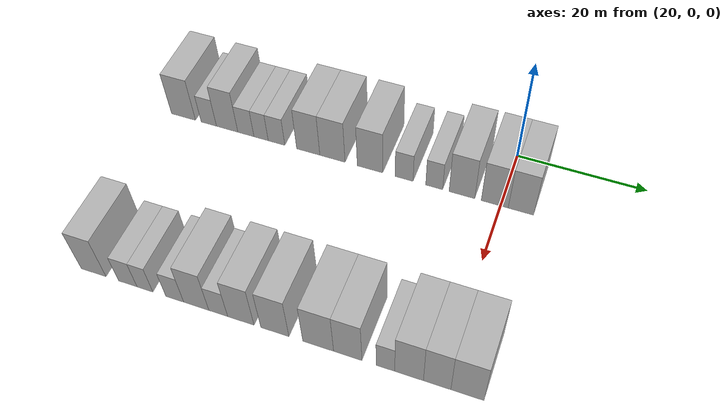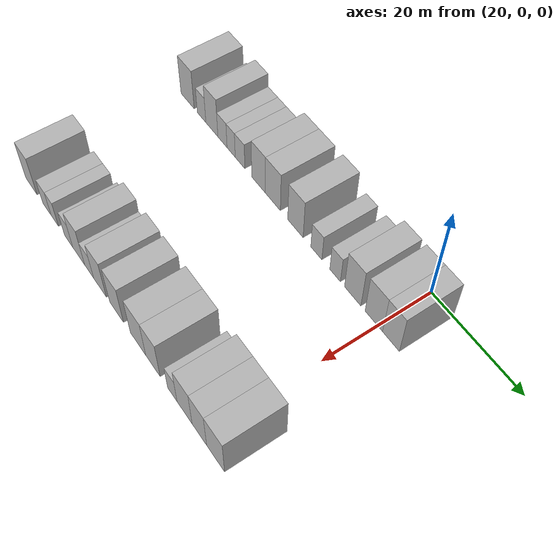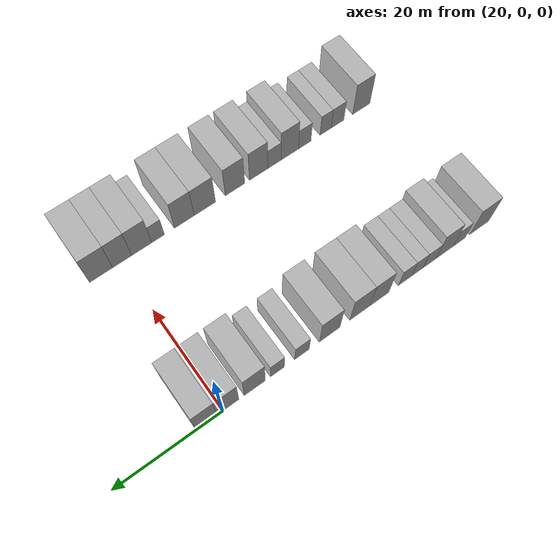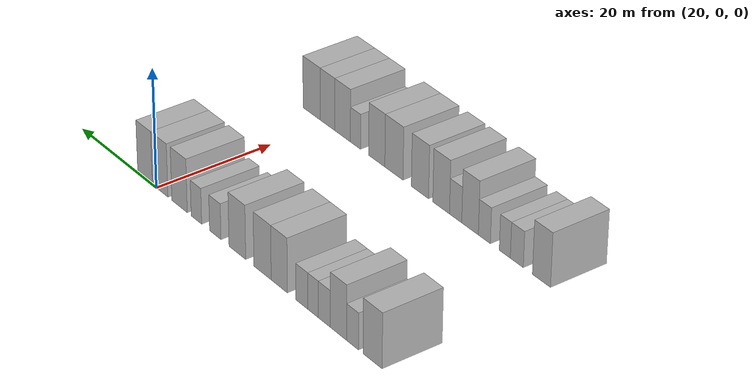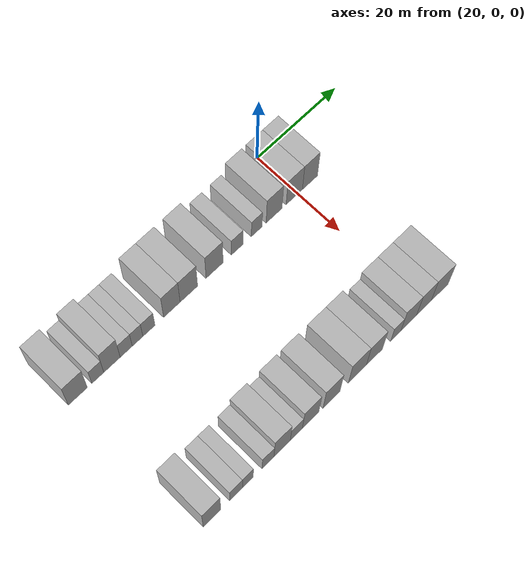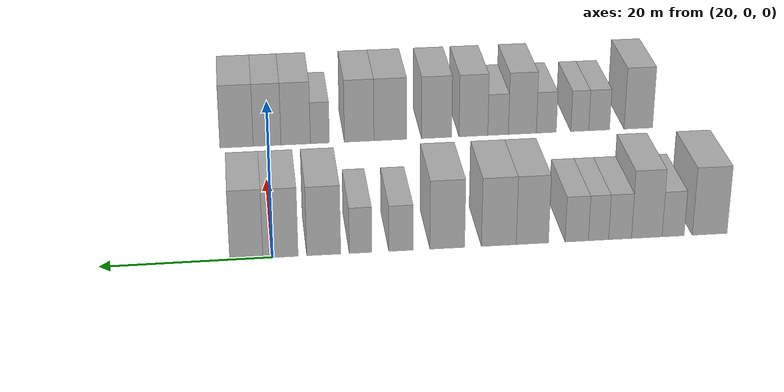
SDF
<sdf version="1.6">
 <world name="default">
  <model name="building_40">
   <static>1</static>
   <pose>25.0000 -52.2146 0 0.000000 0.000000 0.000000</pose>
   <link name="link">
    <pose>0 0 4.50 0 0 0</pose>
    <collision name="collision"><geometry><box><size>10.0000 4.2497 9.0000</size></box></geometry></collision>
    <visual name="visual">
     <cast_shadows>0</cast_shadows>
     <geometry><box><size>10.0000 4.2497 9.0000</size></box></geometry>
     <material>
      <script>
       <uri>model://HANNAS_wall/materials/scripts</uri>
       <uri>model://HANNAS_wall/materials/textures</uri>
       <name>vrc/HANNAS_wall</name>
      </script>
     </material>
    </visual>
   </link>
  </model>
  <model name="building_41">
   <static>1</static>
   <pose>25.0000 -47.7446 0 0.000000 0.000000 0.000000</pose>
   <link name="link">
    <pose>0 0 3.00 0 0 0</pose>
    <collision name="collision"><geometry><box><size>10.0000 2.6902 6.0000</size></box></geometry></collision>
    <visual name="visual">
     <cast_shadows>0</cast_shadows>
     <geometry><box><size>10.0000 2.6902 6.0000</size></box></geometry>
     <material>
      <script>
       <uri>model://HANNAS_wall/materials/scripts</uri>
       <uri>model://HANNAS_wall/materials/textures</uri>
       <name>vrc/HANNAS_wall</name>
      </script>
     </material>
    </visual>
   </link>
  </model>
  <model name="building_42">
   <static>1</static>
   <pose>25.0000 -44.5399 0 0.000000 0.000000 0.000000</pose>
   <link name="link">
    <pose>0 0 4.50 0 0 0</pose>
    <collision name="collision"><geometry><box><size>10.0000 3.7191 9.0000</size></box></geometry></collision>
    <visual name="visual">
     <cast_shadows>0</cast_shadows>
     <geometry><box><size>10.0000 3.7191 9.0000</size></box></geometry>
     <material>
      <script>
       <uri>model://HANNAS_wall/materials/scripts</uri>
       <uri>model://HANNAS_wall/materials/textures</uri>
       <name>vrc/HANNAS_wall</name>
      </script>
     </material>
    </visual>
   </link>
  </model>
  <model name="building_43">
   <static>1</static>
   <pose>25.0000 -41.2943 0 0.000000 0.000000 0.000000</pose>
   <link name="link">
    <pose>0 0 3.00 0 0 0</pose>
    <collision name="collision"><geometry><box><size>10.0000 2.7721 6.0000</size></box></geometry></collision>
    <visual name="visual">
     <cast_shadows>0</cast_shadows>
     <geometry><box><size>10.0000 2.7721 6.0000</size></box></geometry>
     <material>
      <script>
       <uri>model://HANNAS_wall/materials/scripts</uri>
       <uri>model://HANNAS_wall/materials/textures</uri>
       <name>vrc/HANNAS_wall</name>
      </script>
     </material>
    </visual>
   </link>
  </model>
  <model name="building_44">
   <static>1</static>
   <pose>25.0000 -38.6883 0 0.000000 0.000000 0.000000</pose>
   <link name="link">
    <pose>0 0 3.00 0 0 0</pose>
    <collision name="collision"><geometry><box><size>10.0000 2.4399 6.0000</size></box></geometry></collision>
    <visual name="visual">
     <cast_shadows>0</cast_shadows>
     <geometry><box><size>10.0000 2.4399 6.0000</size></box></geometry>
     <material>
      <script>
       <uri>model://HANNAS_wall/materials/scripts</uri>
       <uri>model://HANNAS_wall/materials/textures</uri>
       <name>vrc/HANNAS_wall</name>
      </script>
     </material>
    </visual>
   </link>
  </model>
  <model name="building_45">
   <static>1</static>
   <pose>25.0000 -36.0601 0 0.000000 0.000000 0.000000</pose>
   <link name="link">
    <pose>0 0 3.00 0 0 0</pose>
    <collision name="collision"><geometry><box><size>10.0000 2.8165 6.0000</size></box></geometry></collision>
    <visual name="visual">
     <cast_shadows>0</cast_shadows>
     <geometry><box><size>10.0000 2.8165 6.0000</size></box></geometry>
     <material>
      <script>
       <uri>model://HANNAS_wall/materials/scripts</uri>
       <uri>model://HANNAS_wall/materials/textures</uri>
       <name>vrc/HANNAS_wall</name>
      </script>
     </material>
    </visual>
   </link>
  </model>
  <model name="building_46">
   <static>1</static>
   <pose>25.0000 -30.7179 0 0.000000 0.000000 0.000000</pose>
   <link name="link">
    <pose>0 0 4.50 0 0 0</pose>
    <collision name="collision"><geometry><box><size>10.0000 3.8680 9.0000</size></box></geometry></collision>
    <visual name="visual">
     <cast_shadows>0</cast_shadows>
     <geometry><box><size>10.0000 3.8680 9.0000</size></box></geometry>
     <material>
      <script>
       <uri>model://HANNAS_wall/materials/scripts</uri>
       <uri>model://HANNAS_wall/materials/textures</uri>
       <name>vrc/HANNAS_wall</name>
      </script>
     </material>
    </visual>
   </link>
  </model>
  <model name="building_47">
   <static>1</static>
   <pose>25.0000 -26.7007 0 0.000000 0.000000 0.000000</pose>
   <link name="link">
    <pose>0 0 4.50 0 0 0</pose>
    <collision name="collision"><geometry><box><size>10.0000 4.1663 9.0000</size></box></geometry></collision>
    <visual name="visual">
     <cast_shadows>0</cast_shadows>
     <geometry><box><size>10.0000 4.1663 9.0000</size></box></geometry>
     <material>
      <script>
       <uri>model://HANNAS_wall/materials/scripts</uri>
       <uri>model://HANNAS_wall/materials/textures</uri>
       <name>vrc/HANNAS_wall</name>
      </script>
     </material>
    </visual>
   </link>
  </model>
  <model name="building_48">
   <static>1</static>
   <pose>25.0000 -20.5544 0 0.000000 0.000000 0.000000</pose>
   <link name="link">
    <pose>0 0 4.50 0 0 0</pose>
    <collision name="collision"><geometry><box><size>10.0000 4.1264 9.0000</size></box></geometry></collision>
    <visual name="visual">
     <cast_shadows>0</cast_shadows>
     <geometry><box><size>10.0000 4.1264 9.0000</size></box></geometry>
     <material>
      <script>
       <uri>model://HANNAS_wall/materials/scripts</uri>
       <uri>model://HANNAS_wall/materials/textures</uri>
       <name>vrc/HANNAS_wall</name>
      </script>
     </material>
    </visual>
   </link>
  </model>
  <model name="building_49">
   <static>1</static>
   <pose>25.0000 -15.0626 0 0.000000 0.000000 0.000000</pose>
   <link name="link">
    <pose>0 0 3.00 0 0 0</pose>
    <collision name="collision"><geometry><box><size>10.0000 2.8571 6.0000</size></box></geometry></collision>
    <visual name="visual">
     <cast_shadows>0</cast_shadows>
     <geometry><box><size>10.0000 2.8571 6.0000</size></box></geometry>
     <material>
      <script>
       <uri>model://HANNAS_wall/materials/scripts</uri>
       <uri>model://HANNAS_wall/materials/textures</uri>
       <name>vrc/HANNAS_wall</name>
      </script>
     </material>
    </visual>
   </link>
  </model>
  <model name="building_50">
   <static>1</static>
   <pose>25.0000 -10.3037 0 0.000000 0.000000 0.000000</pose>
   <link name="link">
    <pose>0 0 3.00 0 0 0</pose>
    <collision name="collision"><geometry><box><size>10.0000 2.6608 6.0000</size></box></geometry></collision>
    <visual name="visual">
     <cast_shadows>0</cast_shadows>
     <geometry><box><size>10.0000 2.6608 6.0000</size></box></geometry>
     <material>
      <script>
       <uri>model://HANNAS_wall/materials/scripts</uri>
       <uri>model://HANNAS_wall/materials/textures</uri>
       <name>vrc/HANNAS_wall</name>
      </script>
     </material>
    </visual>
   </link>
  </model>
  <model name="building_51">
   <static>1</static>
   <pose>25.0000 -5.9813 0 0.000000 0.000000 0.000000</pose>
   <link name="link">
    <pose>0 0 4.50 0 0 0</pose>
    <collision name="collision"><geometry><box><size>10.0000 3.9838 9.0000</size></box></geometry></collision>
    <visual name="visual">
     <cast_shadows>0</cast_shadows>
     <geometry><box><size>10.0000 3.9838 9.0000</size></box></geometry>
     <material>
      <script>
       <uri>model://HANNAS_wall/materials/scripts</uri>
       <uri>model://HANNAS_wall/materials/textures</uri>
       <name>vrc/HANNAS_wall</name>
      </script>
     </material>
    </visual>
   </link>
  </model>
  <model name="building_52">
   <static>1</static>
   <pose>25.0000 -0.9367 0 0.000000 0.000000 0.000000</pose>
   <link name="link">
    <pose>0 0 4.50 0 0 0</pose>
    <collision name="collision"><geometry><box><size>10.0000 4.1054 9.0000</size></box></geometry></collision>
    <visual name="visual">
     <cast_shadows>0</cast_shadows>
     <geometry><box><size>10.0000 4.1054 9.0000</size></box></geometry>
     <material>
      <script>
       <uri>model://HANNAS_wall/materials/scripts</uri>
       <uri>model://HANNAS_wall/materials/textures</uri>
       <name>vrc/HANNAS_wall</name>
      </script>
     </material>
    </visual>
   </link>
  </model>
  <model name="building_53">
   <static>1</static>
   <pose>25.0000 3.0385 0 0.000000 0.000000 0.000000</pose>
   <link name="link">
    <pose>0 0 4.50 0 0 0</pose>
    <collision name="collision"><geometry><box><size>10.0000 3.8451 9.0000</size></box></geometry></collision>
    <visual name="visual">
     <cast_shadows>0</cast_shadows>
     <geometry><box><size>10.0000 3.8451 9.0000</size></box></geometry>
     <material>
      <script>
       <uri>model://HANNAS_wall/materials/scripts</uri>
       <uri>model://HANNAS_wall/materials/textures</uri>
       <name>vrc/HANNAS_wall</name>
      </script>
     </material>
    </visual>
   </link>
  </model>
  <model name="building_153">
   <static>1</static>
   <pose>55.0000 -50.6962 0 0.000000 0.000000 0.000000</pose>
   <link name="link">
    <pose>0 0 4.50 0 0 0</pose>
    <collision name="collision"><geometry><box><size>10.0000 3.9426 9.0000</size></box></geometry></collision>
    <visual name="visual">
     <cast_shadows>0</cast_shadows>
     <geometry><box><size>10.0000 3.9426 9.0000</size></box></geometry>
     <material>
      <script>
       <uri>model://HANNAS_wall/materials/scripts</uri>
       <uri>model://HANNAS_wall/materials/textures</uri>
       <name>vrc/HANNAS_wall</name>
      </script>
     </material>
    </visual>
   </link>
  </model>
  <model name="building_154">
   <static>1</static>
   <pose>55.0000 -45.2849 0 0.000000 0.000000 0.000000</pose>
   <link name="link">
    <pose>0 0 3.00 0 0 0</pose>
    <collision name="collision"><geometry><box><size>10.0000 2.8800 6.0000</size></box></geometry></collision>
    <visual name="visual">
     <cast_shadows>0</cast_shadows>
     <geometry><box><size>10.0000 2.8800 6.0000</size></box></geometry>
     <material>
      <script>
       <uri>model://HANNAS_wall/materials/scripts</uri>
       <uri>model://HANNAS_wall/materials/textures</uri>
       <name>vrc/HANNAS_wall</name>
      </script>
     </material>
    </visual>
   </link>
  </model>
  <model name="building_155">
   <static>1</static>
   <pose>55.0000 -42.6183 0 0.000000 0.000000 0.000000</pose>
   <link name="link">
    <pose>0 0 3.00 0 0 0</pose>
    <collision name="collision"><geometry><box><size>10.0000 2.4531 6.0000</size></box></geometry></collision>
    <visual name="visual">
     <cast_shadows>0</cast_shadows>
     <geometry><box><size>10.0000 2.4531 6.0000</size></box></geometry>
     <material>
      <script>
       <uri>model://HANNAS_wall/materials/scripts</uri>
       <uri>model://HANNAS_wall/materials/textures</uri>
       <name>vrc/HANNAS_wall</name>
      </script>
     </material>
    </visual>
   </link>
  </model>
  <model name="building_156">
   <static>1</static>
   <pose>55.0000 -38.0248 0 0.000000 0.000000 0.000000</pose>
   <link name="link">
    <pose>0 0 3.00 0 0 0</pose>
    <collision name="collision"><geometry><box><size>10.0000 2.7338 6.0000</size></box></geometry></collision>
    <visual name="visual">
     <cast_shadows>0</cast_shadows>
     <geometry><box><size>10.0000 2.7338 6.0000</size></box></geometry>
     <material>
      <script>
       <uri>model://HANNAS_wall/materials/scripts</uri>
       <uri>model://HANNAS_wall/materials/textures</uri>
       <name>vrc/HANNAS_wall</name>
      </script>
     </material>
    </visual>
   </link>
  </model>
  <model name="building_157">
   <static>1</static>
   <pose>55.0000 -34.7535 0 0.000000 0.000000 0.000000</pose>
   <link name="link">
    <pose>0 0 4.50 0 0 0</pose>
    <collision name="collision"><geometry><box><size>10.0000 3.8088 9.0000</size></box></geometry></collision>
    <visual name="visual">
     <cast_shadows>0</cast_shadows>
     <geometry><box><size>10.0000 3.8088 9.0000</size></box></geometry>
     <material>
      <script>
       <uri>model://HANNAS_wall/materials/scripts</uri>
       <uri>model://HANNAS_wall/materials/textures</uri>
       <name>vrc/HANNAS_wall</name>
      </script>
     </material>
    </visual>
   </link>
  </model>
  <model name="building_158">
   <static>1</static>
   <pose>55.0000 -31.4401 0 0.000000 0.000000 0.000000</pose>
   <link name="link">
    <pose>0 0 3.00 0 0 0</pose>
    <collision name="collision"><geometry><box><size>10.0000 2.8181 6.0000</size></box></geometry></collision>
    <visual name="visual">
     <cast_shadows>0</cast_shadows>
     <geometry><box><size>10.0000 2.8181 6.0000</size></box></geometry>
     <material>
      <script>
       <uri>model://HANNAS_wall/materials/scripts</uri>
       <uri>model://HANNAS_wall/materials/textures</uri>
       <name>vrc/HANNAS_wall</name>
      </script>
     </material>
    </visual>
   </link>
  </model>
  <model name="building_159">
   <static>1</static>
   <pose>55.0000 -28.0813 0 0.000000 0.000000 0.000000</pose>
   <link name="link">
    <pose>0 0 4.50 0 0 0</pose>
    <collision name="collision"><geometry><box><size>10.0000 3.8994 9.0000</size></box></geometry></collision>
    <visual name="visual">
     <cast_shadows>0</cast_shadows>
     <geometry><box><size>10.0000 3.8994 9.0000</size></box></geometry>
     <material>
      <script>
       <uri>model://HANNAS_wall/materials/scripts</uri>
       <uri>model://HANNAS_wall/materials/textures</uri>
       <name>vrc/HANNAS_wall</name>
      </script>
     </material>
    </visual>
   </link>
  </model>
  <model name="building_160">
   <static>1</static>
   <pose>55.0000 -23.0921 0 0.000000 0.000000 0.000000</pose>
   <link name="link">
    <pose>0 0 4.50 0 0 0</pose>
    <collision name="collision"><geometry><box><size>10.0000 4.0790 9.0000</size></box></geometry></collision>
    <visual name="visual">
     <cast_shadows>0</cast_shadows>
     <geometry><box><size>10.0000 4.0790 9.0000</size></box></geometry>
     <material>
      <script>
       <uri>model://HANNAS_wall/materials/scripts</uri>
       <uri>model://HANNAS_wall/materials/textures</uri>
       <name>vrc/HANNAS_wall</name>
      </script>
     </material>
    </visual>
   </link>
  </model>
  <model name="building_161">
   <static>1</static>
   <pose>55.0000 -16.8603 0 0.000000 0.000000 0.000000</pose>
   <link name="link">
    <pose>0 0 4.50 0 0 0</pose>
    <collision name="collision"><geometry><box><size>10.0000 4.3847 9.0000</size></box></geometry></collision>
    <visual name="visual">
     <cast_shadows>0</cast_shadows>
     <geometry><box><size>10.0000 4.3847 9.0000</size></box></geometry>
     <material>
      <script>
       <uri>model://HANNAS_wall/materials/scripts</uri>
       <uri>model://HANNAS_wall/materials/textures</uri>
       <name>vrc/HANNAS_wall</name>
      </script>
     </material>
    </visual>
   </link>
  </model>
  <model name="building_162">
   <static>1</static>
   <pose>55.0000 -12.6824 0 0.000000 0.000000 0.000000</pose>
   <link name="link">
    <pose>0 0 4.50 0 0 0</pose>
    <collision name="collision"><geometry><box><size>10.0000 3.9711 9.0000</size></box></geometry></collision>
    <visual name="visual">
     <cast_shadows>0</cast_shadows>
     <geometry><box><size>10.0000 3.9711 9.0000</size></box></geometry>
     <material>
      <script>
       <uri>model://HANNAS_wall/materials/scripts</uri>
       <uri>model://HANNAS_wall/materials/textures</uri>
       <name>vrc/HANNAS_wall</name>
      </script>
     </material>
    </visual>
   </link>
  </model>
  <model name="building_163">
   <static>1</static>
   <pose>55.0000 -7.4308 0 0.000000 0.000000 0.000000</pose>
   <link name="link">
    <pose>0 0 3.00 0 0 0</pose>
    <collision name="collision"><geometry><box><size>10.0000 2.5320 6.0000</size></box></geometry></collision>
    <visual name="visual">
     <cast_shadows>0</cast_shadows>
     <geometry><box><size>10.0000 2.5320 6.0000</size></box></geometry>
     <material>
      <script>
       <uri>model://HANNAS_wall/materials/scripts</uri>
       <uri>model://HANNAS_wall/materials/textures</uri>
       <name>vrc/HANNAS_wall</name>
      </script>
     </material>
    </visual>
   </link>
  </model>
  <model name="building_164">
   <static>1</static>
   <pose>55.0000 -4.2085 0 0.000000 0.000000 0.000000</pose>
   <link name="link">
    <pose>0 0 4.50 0 0 0</pose>
    <collision name="collision"><geometry><box><size>10.0000 3.9126 9.0000</size></box></geometry></collision>
    <visual name="visual">
     <cast_shadows>0</cast_shadows>
     <geometry><box><size>10.0000 3.9126 9.0000</size></box></geometry>
     <material>
      <script>
       <uri>model://HANNAS_wall/materials/scripts</uri>
       <uri>model://HANNAS_wall/materials/textures</uri>
       <name>vrc/HANNAS_wall</name>
      </script>
     </material>
    </visual>
   </link>
  </model>
  <model name="building_165">
   <static>1</static>
   <pose>55.0000 -0.4105 0 0.000000 0.000000 0.000000</pose>
   <link name="link">
    <pose>0 0 4.50 0 0 0</pose>
    <collision name="collision"><geometry><box><size>10.0000 3.6833 9.0000</size></box></geometry></collision>
    <visual name="visual">
     <cast_shadows>0</cast_shadows>
     <geometry><box><size>10.0000 3.6833 9.0000</size></box></geometry>
     <material>
      <script>
       <uri>model://HANNAS_wall/materials/scripts</uri>
       <uri>model://HANNAS_wall/materials/textures</uri>
       <name>vrc/HANNAS_wall</name>
      </script>
     </material>
    </visual>
   </link>
  </model>
  <model name="building_166">
   <static>1</static>
   <pose>55.0000 3.6306 0 0.000000 0.000000 0.000000</pose>
   <link name="link">
    <pose>0 0 4.50 0 0 0</pose>
    <collision name="collision"><geometry><box><size>10.0000 4.3989 9.0000</size></box></geometry></collision>
    <visual name="visual">
     <cast_shadows>0</cast_shadows>
     <geometry><box><size>10.0000 4.3989 9.0000</size></box></geometry>
     <material>
      <script>
       <uri>model://HANNAS_wall/materials/scripts</uri>
       <uri>model://HANNAS_wall/materials/textures</uri>
       <name>vrc/HANNAS_wall</name>
      </script>
     </material>
    </visual>
   </link>
  </model>
 </world>
</sdf>
